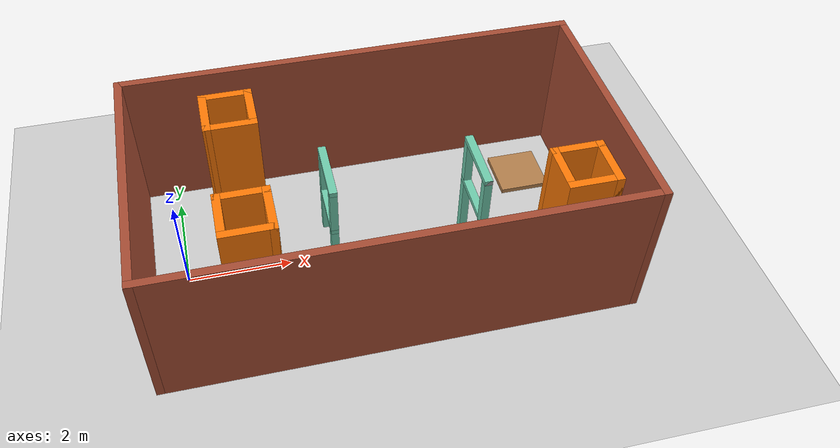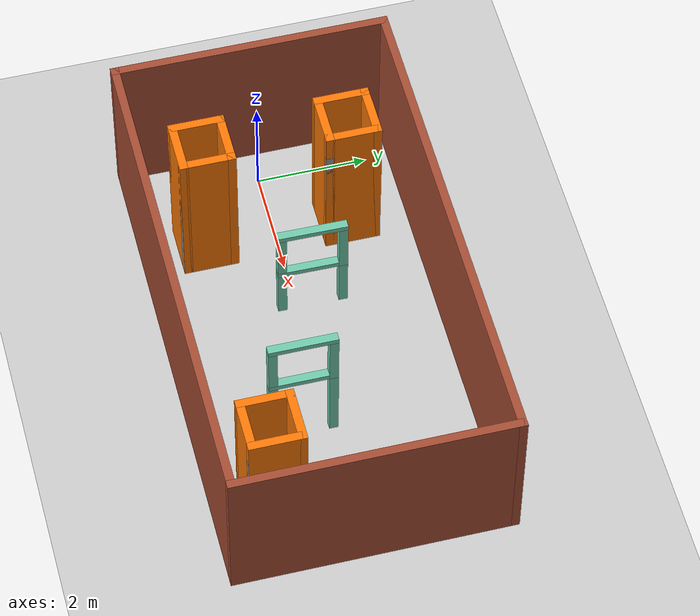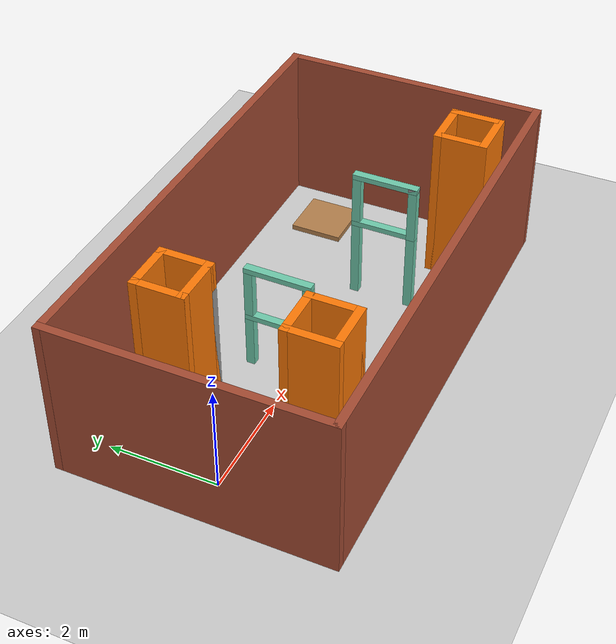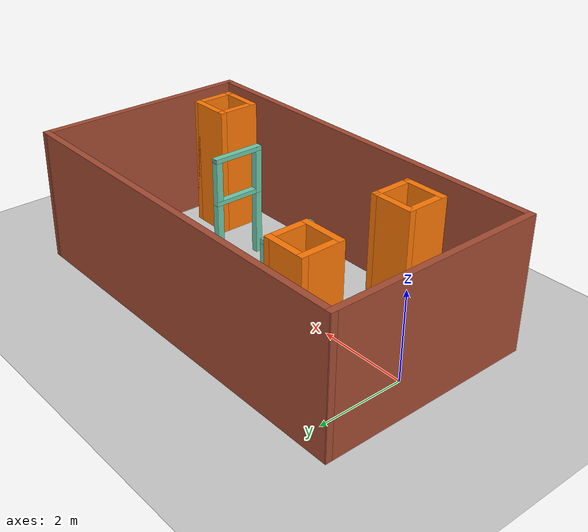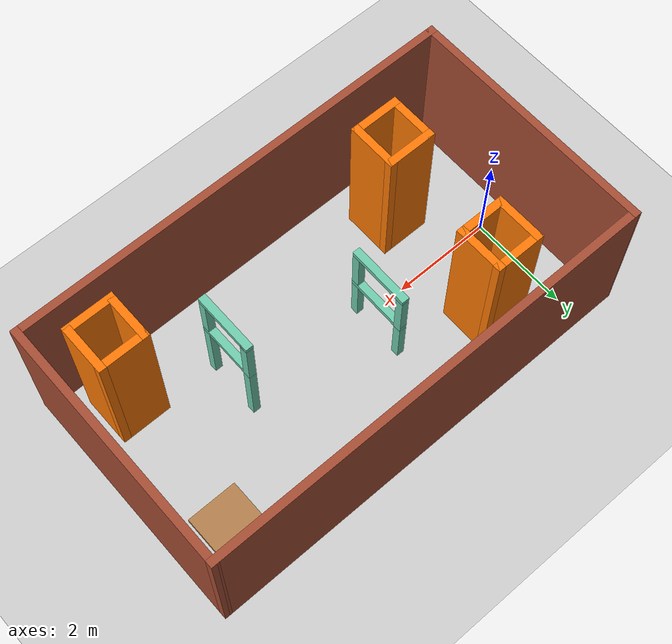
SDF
<sdf version="1.6">
 <world name="default">
  <light name="sun" type="directional">
   <pose>0 0 10 0 -0 0</pose>
   <diffuse>0.8 0.8 0.8 1</diffuse>
   <specular>0.2 0.2 0.2 1</specular>
   <attenuation>
    <range>1000</range>
    <constant>0.9</constant>
    <linear>0.01</linear>
    <quadratic>0.001</quadratic>
   </attenuation>
   <direction>-0.5 0.1 -0.9</direction>
  </light>
  <model name="ground_plane">
   <static>1</static>
   <link name="link">
    <collision name="collision">
     <geometry><plane><normal>0 0 1</normal><size>100 100</size></plane></geometry>
     <surface><friction><ode><mu>100</mu><mu2>50</mu2></ode></friction></surface>
    </collision>
    <visual name="visual">
     <cast_shadows>0</cast_shadows>
     <geometry><plane><normal>0 0 1</normal><size>100 100</size></plane></geometry>
     <material>
      <script><uri>file://media/materials/scripts/gazebo.material</uri><name>Gazebo/Grey</name></script>
     </material>
    </visual>
   </link>
  </model>
  <gravity>0 0 -9.8</gravity>
  <magnetic_field>6e-06 2.3e-05 -4.2e-05</magnetic_field>
  <atmosphere type="adiabatic"/>
  <physics name="default_physics" default="0" type="ode">
   <max_step_size>0.001</max_step_size>
   <real_time_factor>1</real_time_factor>
   <real_time_update_rate>1000</real_time_update_rate>
  </physics>
  <scene><ambient>0.4 0.4 0.4 1</ambient><background>0.7 0.7 0.7 1</background><shadows>1</shadows></scene>
  <spherical_coordinates>
   <surface_model>EARTH_WGS84</surface_model>
   <latitude_deg>0</latitude_deg>
   <longitude_deg>0</longitude_deg>
   <elevation>0</elevation>
   <heading_deg>0</heading_deg>
  </spherical_coordinates>
  <model name="fangzheng">
   <model name="fangjian">
    <pose>0.382796 -0.085219 0 0 -0 0</pose>
    <link name="Wall_11">
     <collision name="Wall_11_Collision">
      <geometry><box><size>9 0.15 3</size></box></geometry>
      <pose>0 0 1.5 0 -0 0</pose>
     </collision>
     <visual name="Wall_11_Visual">
      <pose>0 0 1.5 0 -0 0</pose>
      <geometry><box><size>9 0.15 3</size></box></geometry>
      <material>
       <script><uri>file://media/materials/scripts/gazebo.material</uri><name>Gazebo/Bricks</name></script>
       <ambient>1 1 1 1</ambient>
      </material>
      <meta><layer>0</layer></meta>
     </visual>
     <pose>-0 2.434 0 0 -0 0</pose>
    </link>
    <link name="Wall_12">
     <collision name="Wall_12_Collision">
      <geometry><box><size>5.017 0.15 3</size></box></geometry>
      <pose>0 0 1.5 0 -0 0</pose>
     </collision>
     <visual name="Wall_12_Visual">
      <pose>0 0 1.5 0 -0 0</pose>
      <geometry><box><size>5.017 0.15 3</size></box></geometry>
      <material>
       <script><uri>file://media/materials/scripts/gazebo.material</uri><name>Gazebo/Bricks</name></script>
       <ambient>1 1 1 1</ambient>
      </material>
      <meta><layer>0</layer></meta>
     </visual>
     <pose>4.425 0.000504 0 0 -0 -1.5708</pose>
    </link>
    <link name="Wall_13">
     <collision name="Wall_13_Collision">
      <geometry><box><size>9 0.15 3</size></box></geometry>
      <pose>0 0 1.5 0 -0 0</pose>
     </collision>
     <visual name="Wall_13_Visual">
      <pose>0 0 1.5 0 -0 0</pose>
      <geometry><box><size>9 0.15 3</size></box></geometry>
      <material>
       <script><uri>file://media/materials/scripts/gazebo.material</uri><name>Gazebo/Bricks</name></script>
       <ambient>1 1 1 1</ambient>
      </material>
      <meta><layer>0</layer></meta>
     </visual>
     <pose>-0 -2.4335 0 0 -0 -3.14148</pose>
    </link>
    <link name="Wall_14">
     <collision name="Wall_14_Collision">
      <geometry><box><size>5.018 0.15 3</size></box></geometry>
      <pose>0 0 1.5 0 -0 0</pose>
     </collision>
     <visual name="Wall_14_Visual">
      <pose>0 0 1.5 0 -0 0</pose>
      <geometry><box><size>5.018 0.15 3</size></box></geometry>
      <material>
       <script><uri>file://media/materials/scripts/gazebo.material</uri><name>Gazebo/Bricks</name></script>
       <ambient>1 1 1 1</ambient>
      </material>
      <meta><layer>0</layer></meta>
     </visual>
     <pose>-4.425 4e-06 0 0 -0 1.5708</pose>
    </link>
    <static>1</static>
   </model>
   <model name="kuang">
    <pose>1.25232 -0.319202 0 0 -0 1.55858</pose>
    <link name="Floor_4">
     <collision name="Floor_4_Collision">
      <geometry><box><size>1.25609 0.151304 0.1</size></box></geometry>
      <pose>0 0 0.05 0 -0 0</pose>
     </collision>
     <visual name="Floor_4_Visual">
      <pose>0 0 0.05 0 -0 0</pose>
      <geometry><box><size>1.25609 0.151304 0.1</size></box></geometry>
      <material>
       <script><uri>file://media/materials/scripts/gazebo.material</uri><name>Gazebo/Grey</name></script>
       <ambient>0.435294 0.796078 0.67451 1</ambient>
      </material>
      <meta><layer>1</layer></meta>
     </visual>
     <pose>2.2e-05 -7.6e-05 1 0 -0 0</pose>
    </link>
    <link name="Floor_5">
     <collision name="Floor_5_Collision">
      <geometry><box><size>1.25609 0.151304 0.1</size></box></geometry>
      <pose>0 0 0.05 0 -0 0</pose>
     </collision>
     <visual name="Floor_5_Visual">
      <pose>0 0 0.05 0 -0 0</pose>
      <geometry><box><size>1.25609 0.151304 0.1</size></box></geometry>
      <material>
       <script><uri>file://media/materials/scripts/gazebo.material</uri><name>Gazebo/Grey</name></script>
       <ambient>0.435294 0.796078 0.67451 1</ambient>
      </material>
      <meta><layer>2</layer></meta>
     </visual>
     <pose>-2.2e-05 7.6e-05 2 0 -0 0</pose>
    </link>
    <link name="Wall_0">
     <collision name="Wall_0_Collision">
      <geometry><box><size>0.16 0.15 1</size></box></geometry>
      <pose>0 0 0.5 0 -0 0</pose>
     </collision>
     <visual name="Wall_0_Visual">
      <pose>0 0 0.5 0 -0 0</pose>
      <geometry><box><size>0.16 0.15 1</size></box></geometry>
      <material>
       <script><uri>file://media/materials/scripts/gazebo.material</uri><name>Gazebo/Grey</name></script>
       <ambient>0.435294 0.796078 0.67451 1</ambient>
      </material>
      <meta><layer>0</layer></meta>
     </visual>
     <pose>-0.548022 0.000576 0 0 -0 3.14159</pose>
    </link>
    <link name="Wall_2">
     <collision name="Wall_2_Collision">
      <geometry><box><size>0.16 0.15 1</size></box></geometry>
      <pose>0 0 0.5 0 -0 0</pose>
     </collision>
     <visual name="Wall_2_Visual">
      <pose>0 0 0.5 0 -0 0</pose>
      <geometry><box><size>0.16 0.15 1</size></box></geometry>
      <material>
       <script><uri>file://media/materials/scripts/gazebo.material</uri><name>Gazebo/Grey</name></script>
       <ambient>0.435294 0.796078 0.67451 1</ambient>
      </material>
      <meta><layer>0</layer></meta>
     </visual>
     <pose>0.548065 -0.000728 0 0 -0 0</pose>
    </link>
    <link name="Wall_21">
     <collision name="Wall_21_Collision">
      <geometry><box><size>0.16 0.15 1</size></box></geometry>
      <pose>0 0 0.5 0 -0 0</pose>
     </collision>
     <visual name="Wall_21_Visual">
      <pose>0 0 0.5 0 -0 0</pose>
      <geometry><box><size>0.16 0.15 1</size></box></geometry>
      <material>
       <script><uri>file://media/materials/scripts/gazebo.material</uri><name>Gazebo/Grey</name></script>
       <ambient>0.435294 0.796078 0.67451 1</ambient>
      </material>
      <meta><layer>1</layer></meta>
     </visual>
     <pose>-0.548022 0.000576 1 0 -0 3.14159</pose>
    </link>
    <link name="Wall_22">
     <collision name="Wall_22_Collision">
      <geometry><box><size>0.16 0.15 1</size></box></geometry>
      <pose>0 0 0.5 0 -0 0</pose>
     </collision>
     <visual name="Wall_22_Visual">
      <pose>0 0 0.5 0 -0 0</pose>
      <geometry><box><size>0.16 0.15 1</size></box></geometry>
      <material>
       <script><uri>file://media/materials/scripts/gazebo.material</uri><name>Gazebo/Grey</name></script>
       <ambient>0.435294 0.796078 0.67451 1</ambient>
      </material>
      <meta><layer>1</layer></meta>
     </visual>
     <pose>0.548065 -0.000728 1 0 -0 0</pose>
    </link>
    <link name="Wall_23">
     <collision name="Wall_23_Collision">
      <geometry><box><size>0.16 0.15 0.09</size></box></geometry>
      <pose>0 0 0.045 0 -0 0</pose>
     </collision>
     <visual name="Wall_23_Visual">
      <pose>0 0 0.045 0 -0 0</pose>
      <geometry><box><size>0.16 0.15 0.09</size></box></geometry>
      <material>
       <script><uri>file://media/materials/scripts/gazebo.material</uri><name>Gazebo/Grey</name></script>
       <ambient>1 1 1 1</ambient>
      </material>
      <meta><layer>2</layer></meta>
     </visual>
     <pose>-0.548022 0.000576 2 0 -0 3.14159</pose>
    </link>
    <link name="Wall_24">
     <collision name="Wall_24_Collision">
      <geometry><box><size>0.16 0.15 0.09</size></box></geometry>
      <pose>0 0 0.045 0 -0 0</pose>
     </collision>
     <visual name="Wall_24_Visual">
      <pose>0 0 0.045 0 -0 0</pose>
      <geometry><box><size>0.16 0.15 0.09</size></box></geometry>
      <material>
       <script><uri>file://media/materials/scripts/gazebo.material</uri><name>Gazebo/Grey</name></script>
       <ambient>1 1 1 1</ambient>
      </material>
      <meta><layer>2</layer></meta>
     </visual>
     <pose>0.547978 -0.000424 2 0 -0 0</pose>
    </link>
    <static>1</static>
   </model>
   <model name="kuang2">
    <pose>-1.37244 0.499628 0 0 -0 1.56868</pose>
    <link name="Floor_0">
     <collision name="Floor_0_Collision">
      <geometry><box><size>1.21772 0.151546 0.1</size></box></geometry>
      <pose>0 0 0.05 0 -0 0</pose>
     </collision>
     <visual name="Floor_0_Visual">
      <pose>0 0 0.05 0 -0 0</pose>
      <geometry><box><size>1.21772 0.151546 0.1</size></box></geometry>
      <material>
       <script><uri>file://media/materials/scripts/gazebo.material</uri><name>Gazebo/Grey</name></script>
       <ambient>0.435294 0.796078 0.67451 1</ambient>
      </material>
      <meta><layer>1</layer></meta>
     </visual>
     <pose>0 0 1.5 0 -0 0</pose>
    </link>
    <link name="Floor_1">
     <collision name="Floor_1_Collision">
      <geometry><box><size>1.218 0.152 0.1</size></box></geometry>
      <pose>0 0 0.05 0 -0 0</pose>
     </collision>
     <visual name="Floor_1_Visual">
      <pose>0 0 0.05 0 -0 0</pose>
      <geometry><box><size>1.218 0.152 0.1</size></box></geometry>
      <material>
       <script><uri>file://media/materials/scripts/gazebo.material</uri><name>Gazebo/Grey</name></script>
       <ambient>0.435294 0.796078 0.67451 1</ambient>
      </material>
      <meta><layer>2</layer></meta>
     </visual>
     <pose>0 0 2.5 0 -0 0</pose>
    </link>
    <link name="Wall_0">
     <collision name="Wall_0_Collision">
      <geometry><box><size>0.16 0.15 1.5</size></box></geometry>
      <pose>0 0 0.75 0 -0 0</pose>
     </collision>
     <visual name="Wall_0_Visual">
      <pose>0 0 0.75 0 -0 0</pose>
      <geometry><box><size>0.16 0.15 1.5</size></box></geometry>
      <material>
       <script><uri>file://media/materials/scripts/gazebo.material</uri><name>Gazebo/Grey</name></script>
       <ambient>0.435294 0.796078 0.67451 1</ambient>
      </material>
      <meta><layer>0</layer></meta>
     </visual>
     <pose>-0.529 0.001 0 0 -0 0</pose>
    </link>
    <link name="Wall_10">
     <collision name="Wall_10_Collision">
      <geometry><box><size>0.16 0.15 0.09</size></box></geometry>
      <pose>0 0 0.045 0 -0 0</pose>
     </collision>
     <visual name="Wall_10_Visual">
      <pose>0 0 0.045 0 -0 0</pose>
      <geometry><box><size>0.16 0.15 0.09</size></box></geometry>
      <material>
       <script><uri>file://media/materials/scripts/gazebo.material</uri><name>Gazebo/Grey</name></script>
       <ambient>1 1 1 1</ambient>
      </material>
      <meta><layer>2</layer></meta>
     </visual>
     <pose>-0.529 0.001 2.5 0 -0 0</pose>
    </link>
    <link name="Wall_11">
     <collision name="Wall_11_Collision">
      <geometry><box><size>0.16 0.15 0.09</size></box></geometry>
      <pose>0 0 0.045 0 -0 0</pose>
     </collision>
     <visual name="Wall_11_Visual">
      <pose>0 0 0.045 0 -0 0</pose>
      <geometry><box><size>0.16 0.15 0.09</size></box></geometry>
      <material>
       <script><uri>file://media/materials/scripts/gazebo.material</uri><name>Gazebo/Grey</name></script>
       <ambient>1 1 1 1</ambient>
      </material>
      <meta><layer>2</layer></meta>
     </visual>
     <pose>0.529 -0.001 2.5 0 -0 0</pose>
    </link>
    <link name="Wall_2">
     <collision name="Wall_2_Collision">
      <geometry><box><size>0.16 0.15 1.5</size></box></geometry>
      <pose>0 0 0.75 0 -0 0</pose>
     </collision>
     <visual name="Wall_2_Visual">
      <pose>0 0 0.75 0 -0 0</pose>
      <geometry><box><size>0.16 0.15 1.5</size></box></geometry>
      <material>
       <script><uri>file://media/materials/scripts/gazebo.material</uri><name>Gazebo/Grey</name></script>
       <ambient>0.435294 0.796078 0.67451 1</ambient>
      </material>
      <meta><layer>0</layer></meta>
     </visual>
     <pose>0.528718 -0.000546 0 0 -0 0</pose>
    </link>
    <link name="Wall_8">
     <collision name="Wall_8_Collision">
      <geometry><box><size>0.16 0.15 1</size></box></geometry>
      <pose>0 0 0.5 0 -0 0</pose>
     </collision>
     <visual name="Wall_8_Visual">
      <pose>0 0 0.5 0 -0 0</pose>
      <geometry><box><size>0.16 0.15 1</size></box></geometry>
      <material>
       <script><uri>file://media/materials/scripts/gazebo.material</uri><name>Gazebo/Grey</name></script>
       <ambient>0.435294 0.796078 0.67451 1</ambient>
      </material>
      <meta><layer>1</layer></meta>
     </visual>
     <pose>-0.529 0.001 1.5 0 -0 0</pose>
    </link>
    <link name="Wall_9">
     <collision name="Wall_9_Collision">
      <geometry><box><size>0.16 0.15 1</size></box></geometry>
      <pose>0 0 0.5 0 -0 0</pose>
     </collision>
     <visual name="Wall_9_Visual">
      <pose>0 0 0.5 0 -0 0</pose>
      <geometry><box><size>0.16 0.15 1</size></box></geometry>
      <material>
       <script><uri>file://media/materials/scripts/gazebo.material</uri><name>Gazebo/Grey</name></script>
       <ambient>0.435294 0.796078 0.67451 1</ambient>
      </material>
      <meta><layer>1</layer></meta>
     </visual>
     <pose>0.529 -0.001 1.5 0 -0 0</pose>
    </link>
    <static>1</static>
   </model>
   <model name="tingji">
    <pose>-3.04313 -1.40416 0 0 -0 0</pose>
    <link name="Floor_0">
     <collision name="Floor_0_Collision">
      <geometry><box><size>1 1 0.1</size></box></geometry>
      <pose>0 0 0.05 0 -0 0</pose>
     </collision>
     <visual name="Floor_0_Visual">
      <pose>0 0 0.05 0 -0 0</pose>
      <geometry><box><size>1 1 0.1</size></box></geometry>
      <material>
       <script><uri>file://media/materials/scripts/gazebo.material</uri><name>Gazebo/Wood</name></script>
       <ambient>1 1 1 1</ambient>
      </material>
      <meta><layer>1</layer></meta>
     </visual>
    </link>
    <link name="Floor_1">
     <collision name="Floor_1_Collision">
      <geometry><box><size>1 1 0.1</size></box></geometry>
      <pose>0 0 0.05 0 -0 0</pose>
     </collision>
     <visual name="Floor_1_Visual">
      <pose>0 0 0.05 0 -0 0</pose>
      <geometry><box><size>1 1 0.1</size></box></geometry>
      <material>
       <script><uri>file://media/materials/scripts/gazebo.material</uri><name>Gazebo/Wood</name></script>
       <ambient>1 1 1 1</ambient>
      </material>
      <meta><layer>2</layer></meta>
     </visual>
    </link>
    <link name="Wall_16">
     <collision name="Wall_16_Collision"><geometry><box><size>1 0.15 0</size></box></geometry></collision>
     <visual name="Wall_16_Visual">
      <geometry><box><size>1 0.15 0</size></box></geometry>
      <material>
       <script><uri>file://media/materials/scripts/gazebo.material</uri><name>Gazebo/Wood</name></script>
       <ambient>1 1 1 1</ambient>
      </material>
      <meta><layer>0</layer></meta>
     </visual>
     <pose>-0.425 0 0 0 -0 -1.5708</pose>
    </link>
    <link name="Wall_17">
     <collision name="Wall_17_Collision"><geometry><box><size>1 0.15 0</size></box></geometry></collision>
     <visual name="Wall_17_Visual">
      <geometry><box><size>1 0.15 0</size></box></geometry>
      <material>
       <script><uri>file://media/materials/scripts/gazebo.material</uri><name>Gazebo/Wood</name></script>
       <ambient>1 1 1 1</ambient>
      </material>
      <meta><layer>0</layer></meta>
     </visual>
     <pose>0 -0.425 0 0 -0 0</pose>
    </link>
    <link name="Wall_18">
     <collision name="Wall_18_Collision"><geometry><box><size>1 0.15 0</size></box></geometry></collision>
     <visual name="Wall_18_Visual">
      <geometry><box><size>1 0.15 0</size></box></geometry>
      <material>
       <script><uri>file://media/materials/scripts/gazebo.material</uri><name>Gazebo/Wood</name></script>
       <ambient>1 1 1 1</ambient>
      </material>
      <meta><layer>0</layer></meta>
     </visual>
     <pose>0.425 0 0 0 -0 1.5708</pose>
    </link>
    <link name="Wall_19">
     <collision name="Wall_19_Collision"><geometry><box><size>1 0.15 0</size></box></geometry></collision>
     <visual name="Wall_19_Visual">
      <geometry><box><size>1 0.15 0</size></box></geometry>
      <material>
       <script><uri>file://media/materials/scripts/gazebo.material</uri><name>Gazebo/Wood</name></script>
       <ambient>1 1 1 1</ambient>
      </material>
      <meta><layer>0</layer></meta>
     </visual>
     <pose>0 0.425 0 0 -0 3.14159</pose>
    </link>
    <link name="Wall_21">
     <collision name="Wall_21_Collision"><geometry><box><size>1 0.15 0</size></box></geometry></collision>
     <visual name="Wall_21_Visual">
      <geometry><box><size>1 0.15 0</size></box></geometry>
      <material>
       <script><uri>file://media/materials/scripts/gazebo.material</uri><name>Gazebo/Grey</name></script>
       <ambient>1 1 1 1</ambient>
      </material>
      <meta><layer>1</layer></meta>
     </visual>
     <pose>-0.425 -0 0 0 -0 -1.5708</pose>
    </link>
    <link name="Wall_22">
     <collision name="Wall_22_Collision"><geometry><box><size>1 0.15 0</size></box></geometry></collision>
     <visual name="Wall_22_Visual">
      <geometry><box><size>1 0.15 0</size></box></geometry>
      <material>
       <script><uri>file://media/materials/scripts/gazebo.material</uri><name>Gazebo/Grey</name></script>
       <ambient>1 1 1 1</ambient>
      </material>
      <meta><layer>1</layer></meta>
     </visual>
     <pose>0 -0.425 0 0 -0 0</pose>
    </link>
    <link name="Wall_23">
     <collision name="Wall_23_Collision"><geometry><box><size>1 0.15 0</size></box></geometry></collision>
     <visual name="Wall_23_Visual">
      <geometry><box><size>1 0.15 0</size></box></geometry>
      <material>
       <script><uri>file://media/materials/scripts/gazebo.material</uri><name>Gazebo/Grey</name></script>
       <ambient>1 1 1 1</ambient>
      </material>
      <meta><layer>1</layer></meta>
     </visual>
     <pose>0.425 -0 0 0 -0 1.5708</pose>
    </link>
    <link name="Wall_24">
     <collision name="Wall_24_Collision"><geometry><box><size>1 0.15 0</size></box></geometry></collision>
     <visual name="Wall_24_Visual">
      <geometry><box><size>1 0.15 0</size></box></geometry>
      <material>
       <script><uri>file://media/materials/scripts/gazebo.material</uri><name>Gazebo/Grey</name></script>
       <ambient>1 1 1 1</ambient>
      </material>
      <meta><layer>1</layer></meta>
     </visual>
     <pose>0 0.425 0 0 -0 3.14159</pose>
    </link>
    <link name="Wall_26">
     <collision name="Wall_26_Collision"><geometry><box><size>1 0.15 0</size></box></geometry></collision>
     <visual name="Wall_26_Visual">
      <geometry><box><size>1 0.15 0</size></box></geometry>
      <material>
       <script><uri>file://media/materials/scripts/gazebo.material</uri><name>Gazebo/Grey</name></script>
       <ambient>1 1 1 1</ambient>
      </material>
      <meta><layer>2</layer></meta>
     </visual>
     <pose>-0.425 -0 0 0 -0 -1.5708</pose>
    </link>
    <link name="Wall_27">
     <collision name="Wall_27_Collision"><geometry><box><size>1 0.15 0</size></box></geometry></collision>
     <visual name="Wall_27_Visual">
      <geometry><box><size>1 0.15 0</size></box></geometry>
      <material>
       <script><uri>file://media/materials/scripts/gazebo.material</uri><name>Gazebo/Grey</name></script>
       <ambient>1 1 1 1</ambient>
      </material>
      <meta><layer>2</layer></meta>
     </visual>
     <pose>0 -0.425 0 0 -0 0</pose>
    </link>
    <link name="Wall_28">
     <collision name="Wall_28_Collision"><geometry><box><size>1 0.15 0</size></box></geometry></collision>
     <visual name="Wall_28_Visual">
      <geometry><box><size>1 0.15 0</size></box></geometry>
      <material>
       <script><uri>file://media/materials/scripts/gazebo.material</uri><name>Gazebo/Grey</name></script>
       <ambient>1 1 1 1</ambient>
      </material>
      <meta><layer>2</layer></meta>
     </visual>
     <pose>0.425 -0 0 0 -0 1.5708</pose>
    </link>
    <link name="Wall_29">
     <collision name="Wall_29_Collision"><geometry><box><size>1 0.15 0</size></box></geometry></collision>
     <visual name="Wall_29_Visual">
      <geometry><box><size>1 0.15 0</size></box></geometry>
      <material>
       <script><uri>file://media/materials/scripts/gazebo.material</uri><name>Gazebo/Grey</name></script>
       <ambient>1 1 1 1</ambient>
      </material>
      <meta><layer>2</layer></meta>
     </visual>
     <pose>0 0.425 0 0 -0 3.14159</pose>
    </link>
    <static>1</static>
   </model>
   <model name="zhuzi">
    <pose>2.89096 1.23307 0 0 -0 0</pose>
    <link name="Wall_0">
     <collision name="Wall_0_Collision">
      <geometry><box><size>1 0.15 3</size></box></geometry>
      <pose>0 0 1.5 0 -0 0</pose>
     </collision>
     <visual name="Wall_0_Visual">
      <pose>0 0 1.5 0 -0 0</pose>
      <geometry><box><size>1 0.15 3</size></box></geometry>
      <material>
       <script><uri>file://media/materials/scripts/gazebo.material</uri><name>Gazebo/Grey</name></script>
       <ambient>0.996078 0.47451 0.0196078 1</ambient>
      </material>
      <meta><layer>0</layer></meta>
     </visual>
     <pose>0 0.425 0 0 -0 0</pose>
    </link>
    <link name="Wall_1">
     <collision name="Wall_1_Collision">
      <geometry><box><size>1 0.15 3</size></box></geometry>
      <pose>0 0 1.5 0 -0 0</pose>
     </collision>
     <visual name="Wall_1_Visual">
      <pose>0 0 1.5 0 -0 0</pose>
      <geometry><box><size>1 0.15 3</size></box></geometry>
      <material>
       <script><uri>file://media/materials/scripts/gazebo.material</uri><name>Gazebo/Grey</name></script>
       <ambient>0.996078 0.47451 0.0196078 1</ambient>
      </material>
      <meta><layer>0</layer></meta>
     </visual>
     <pose>0.425 -0 0 0 -0 -1.5708</pose>
    </link>
    <link name="Wall_2">
     <collision name="Wall_2_Collision">
      <geometry><box><size>1 0.15 3</size></box></geometry>
      <pose>0 0 1.5 0 -0 0</pose>
     </collision>
     <visual name="Wall_2_Visual">
      <pose>0 0 1.5 0 -0 0</pose>
      <geometry><box><size>1 0.15 3</size></box></geometry>
      <material>
       <script><uri>file://media/materials/scripts/gazebo.material</uri><name>Gazebo/Grey</name></script>
       <ambient>0.996078 0.47451 0.0196078 1</ambient>
      </material>
      <meta><layer>0</layer></meta>
     </visual>
     <pose>0 -0.425 0 0 -0 3.14159</pose>
    </link>
    <link name="Wall_3">
     <collision name="Wall_3_Collision">
      <geometry><box><size>1 0.15 3</size></box></geometry>
      <pose>0 0 1.5 0 -0 0</pose>
     </collision>
     <visual name="Wall_3_Visual">
      <pose>0 0 1.5 0 -0 0</pose>
      <geometry><box><size>1 0.15 3</size></box></geometry>
      <material>
       <script><uri>file://media/materials/scripts/gazebo.material</uri><name>Gazebo/Grey</name></script>
       <ambient>0.996078 0.47451 0.0196078 1</ambient>
      </material>
      <meta><layer>0</layer></meta>
     </visual>
     <pose>-0.425 -0 0 0 -0 1.5708</pose>
    </link>
    <link name="Wall_4">
     <collision name="Wall_4_Collision">
      <geometry><box><size>0.15 0.15 2.5</size></box></geometry>
      <pose>0 0 1.25 0 -0 0</pose>
     </collision>
     <visual name="Wall_4_Visual">
      <pose>0 0 1.25 0 -0 0</pose>
      <geometry><box><size>0.15 0.15 2.5</size></box></geometry>
      <material>
       <script><uri>file://media/materials/scripts/gazebo.material</uri><name>Gazebo/Grey</name></script>
       <ambient>1 1 1 1</ambient>
      </material>
      <meta><layer>0</layer></meta>
     </visual>
     <pose>-0.425 0.425 0 0 -0 0</pose>
    </link>
    <static>1</static>
   </model>
   <model name="zhuzi_clone">
    <pose>2.87822 -1.35507 0 0 -0 0</pose>
    <link name="Wall_0">
     <collision name="Wall_0_Collision">
      <geometry><box><size>1 0.15 3</size></box></geometry>
      <pose>0 0 1.5 0 -0 0</pose>
     </collision>
     <visual name="Wall_0_Visual">
      <pose>0 0 1.5 0 -0 0</pose>
      <geometry><box><size>1 0.15 3</size></box></geometry>
      <material>
       <script><uri>file://media/materials/scripts/gazebo.material</uri><name>Gazebo/Grey</name></script>
       <ambient>0.996078 0.47451 0.0196078 1</ambient>
      </material>
      <meta><layer>0</layer></meta>
     </visual>
     <pose>0 0.425 0 0 -0 0</pose>
    </link>
    <link name="Wall_1">
     <collision name="Wall_1_Collision">
      <geometry><box><size>1 0.15 3</size></box></geometry>
      <pose>0 0 1.5 0 -0 0</pose>
     </collision>
     <visual name="Wall_1_Visual">
      <pose>0 0 1.5 0 -0 0</pose>
      <geometry><box><size>1 0.15 3</size></box></geometry>
      <material>
       <script><uri>file://media/materials/scripts/gazebo.material</uri><name>Gazebo/Grey</name></script>
       <ambient>0.996078 0.47451 0.0196078 1</ambient>
      </material>
      <meta><layer>0</layer></meta>
     </visual>
     <pose>0.425 -0 0 0 -0 -1.5708</pose>
    </link>
    <link name="Wall_2">
     <collision name="Wall_2_Collision">
      <geometry><box><size>1 0.15 3</size></box></geometry>
      <pose>0 0 1.5 0 -0 0</pose>
     </collision>
     <visual name="Wall_2_Visual">
      <pose>0 0 1.5 0 -0 0</pose>
      <geometry><box><size>1 0.15 3</size></box></geometry>
      <material>
       <script><uri>file://media/materials/scripts/gazebo.material</uri><name>Gazebo/Grey</name></script>
       <ambient>0.996078 0.47451 0.0196078 1</ambient>
      </material>
      <meta><layer>0</layer></meta>
     </visual>
     <pose>0 -0.425 0 0 -0 3.14159</pose>
    </link>
    <link name="Wall_3">
     <collision name="Wall_3_Collision">
      <geometry><box><size>1 0.15 3</size></box></geometry>
      <pose>0 0 1.5 0 -0 0</pose>
     </collision>
     <visual name="Wall_3_Visual">
      <pose>0 0 1.5 0 -0 0</pose>
      <geometry><box><size>1 0.15 3</size></box></geometry>
      <material>
       <script><uri>file://media/materials/scripts/gazebo.material</uri><name>Gazebo/Grey</name></script>
       <ambient>0.996078 0.47451 0.0196078 1</ambient>
      </material>
      <meta><layer>0</layer></meta>
     </visual>
     <pose>-0.425 -0 0 0 -0 1.5708</pose>
    </link>
    <link name="Wall_4">
     <collision name="Wall_4_Collision">
      <geometry><box><size>0.15 0.15 2.5</size></box></geometry>
      <pose>0 0 1.25 0 -0 0</pose>
     </collision>
     <visual name="Wall_4_Visual">
      <pose>0 0 1.25 0 -0 0</pose>
      <geometry><box><size>0.15 0.15 2.5</size></box></geometry>
      <material>
       <script><uri>file://media/materials/scripts/gazebo.material</uri><name>Gazebo/Grey</name></script>
       <ambient>1 1 1 1</ambient>
      </material>
      <meta><layer>0</layer></meta>
     </visual>
     <pose>-0.425 0.425 0 0 -0 0</pose>
    </link>
    <static>1</static>
   </model>
   <model name="zhuzi_clone_0">
    <pose>-2.98872 1.43097 0 0 -0 0</pose>
    <link name="Wall_0">
     <collision name="Wall_0_Collision">
      <geometry><box><size>1 0.15 3</size></box></geometry>
      <pose>0 0 1.5 0 -0 0</pose>
     </collision>
     <visual name="Wall_0_Visual">
      <pose>0 0 1.5 0 -0 0</pose>
      <geometry><box><size>1 0.15 3</size></box></geometry>
      <material>
       <script><uri>file://media/materials/scripts/gazebo.material</uri><name>Gazebo/Grey</name></script>
       <ambient>0.996078 0.47451 0.0196078 1</ambient>
      </material>
      <meta><layer>0</layer></meta>
     </visual>
     <pose>0 0.425 0 0 -0 0</pose>
    </link>
    <link name="Wall_1">
     <collision name="Wall_1_Collision">
      <geometry><box><size>1 0.15 3</size></box></geometry>
      <pose>0 0 1.5 0 -0 0</pose>
     </collision>
     <visual name="Wall_1_Visual">
      <pose>0 0 1.5 0 -0 0</pose>
      <geometry><box><size>1 0.15 3</size></box></geometry>
      <material>
       <script><uri>file://media/materials/scripts/gazebo.material</uri><name>Gazebo/Grey</name></script>
       <ambient>0.996078 0.47451 0.0196078 1</ambient>
      </material>
      <meta><layer>0</layer></meta>
     </visual>
     <pose>0.425 -0 0 0 -0 -1.5708</pose>
    </link>
    <link name="Wall_2">
     <collision name="Wall_2_Collision">
      <geometry><box><size>1 0.15 3</size></box></geometry>
      <pose>0 0 1.5 0 -0 0</pose>
     </collision>
     <visual name="Wall_2_Visual">
      <pose>0 0 1.5 0 -0 0</pose>
      <geometry><box><size>1 0.15 3</size></box></geometry>
      <material>
       <script><uri>file://media/materials/scripts/gazebo.material</uri><name>Gazebo/Grey</name></script>
       <ambient>0.996078 0.47451 0.0196078 1</ambient>
      </material>
      <meta><layer>0</layer></meta>
     </visual>
     <pose>0 -0.425 0 0 -0 3.14159</pose>
    </link>
    <link name="Wall_3">
     <collision name="Wall_3_Collision">
      <geometry><box><size>1 0.15 3</size></box></geometry>
      <pose>0 0 1.5 0 -0 0</pose>
     </collision>
     <visual name="Wall_3_Visual">
      <pose>0 0 1.5 0 -0 0</pose>
      <geometry><box><size>1 0.15 3</size></box></geometry>
      <material>
       <script><uri>file://media/materials/scripts/gazebo.material</uri><name>Gazebo/Grey</name></script>
       <ambient>0.996078 0.47451 0.0196078 1</ambient>
      </material>
      <meta><layer>0</layer></meta>
     </visual>
     <pose>-0.425 -0 0 0 -0 1.5708</pose>
    </link>
    <link name="Wall_4">
     <collision name="Wall_4_Collision">
      <geometry><box><size>0.15 0.15 2.5</size></box></geometry>
      <pose>0 0 1.25 0 -0 0</pose>
     </collision>
     <visual name="Wall_4_Visual">
      <pose>0 0 1.25 0 -0 0</pose>
      <geometry><box><size>0.15 0.15 2.5</size></box></geometry>
      <material>
       <script><uri>file://media/materials/scripts/gazebo.material</uri><name>Gazebo/Grey</name></script>
       <ambient>1 1 1 1</ambient>
      </material>
      <meta><layer>0</layer></meta>
     </visual>
     <pose>-0.425 0.425 0 0 -0 0</pose>
    </link>
    <static>1</static>
   </model>
   <static>0</static>
   <pose>4.11169 -0.023634 0 0 -0 3.14147</pose>
  </model>
 </world>
</sdf>
